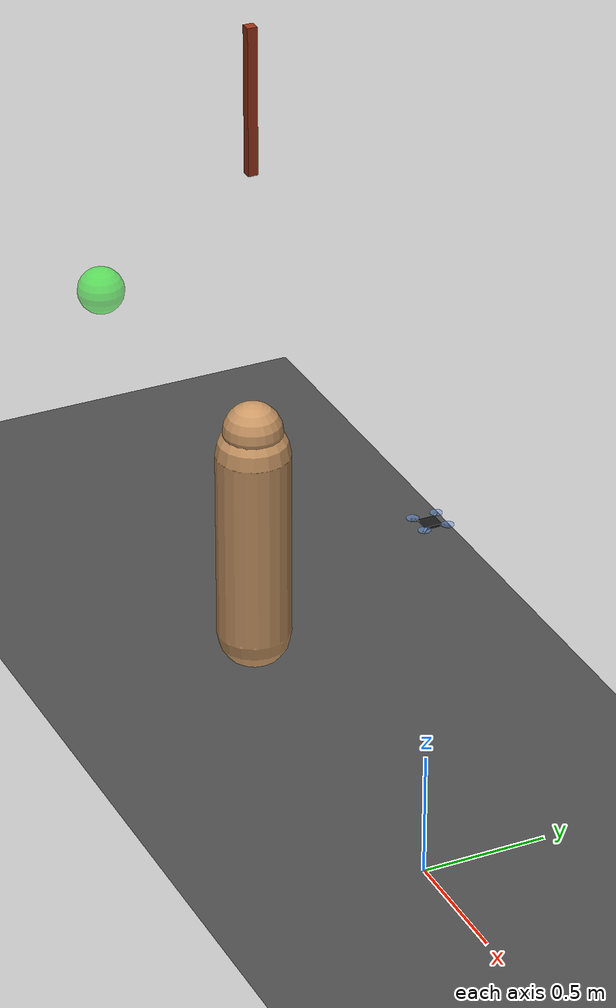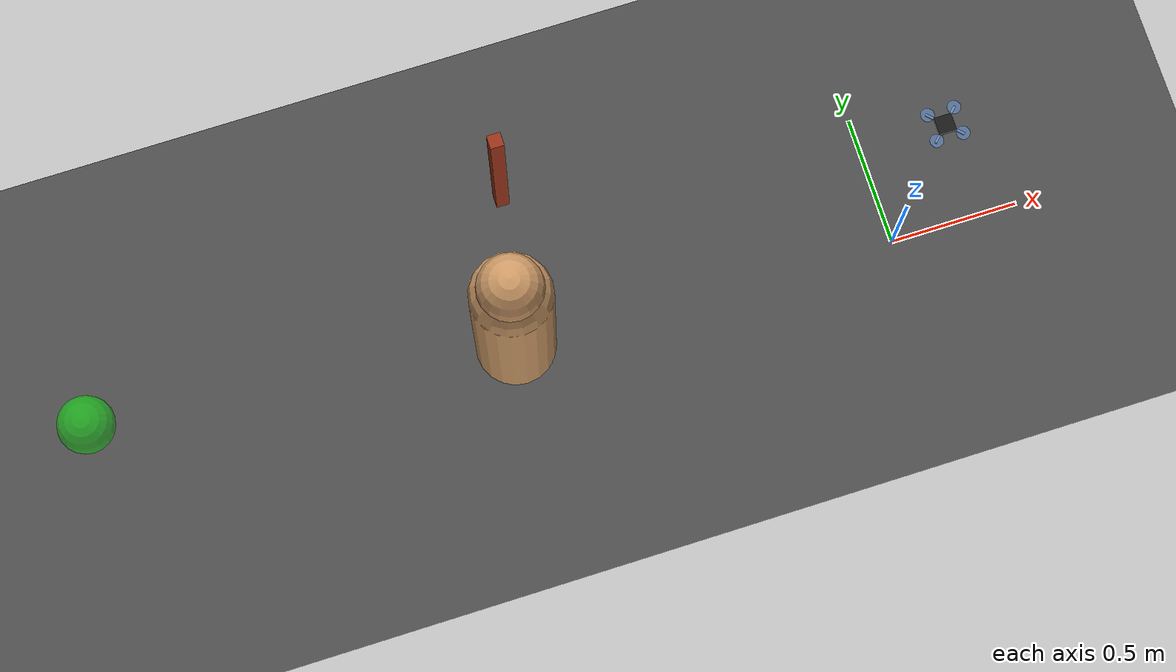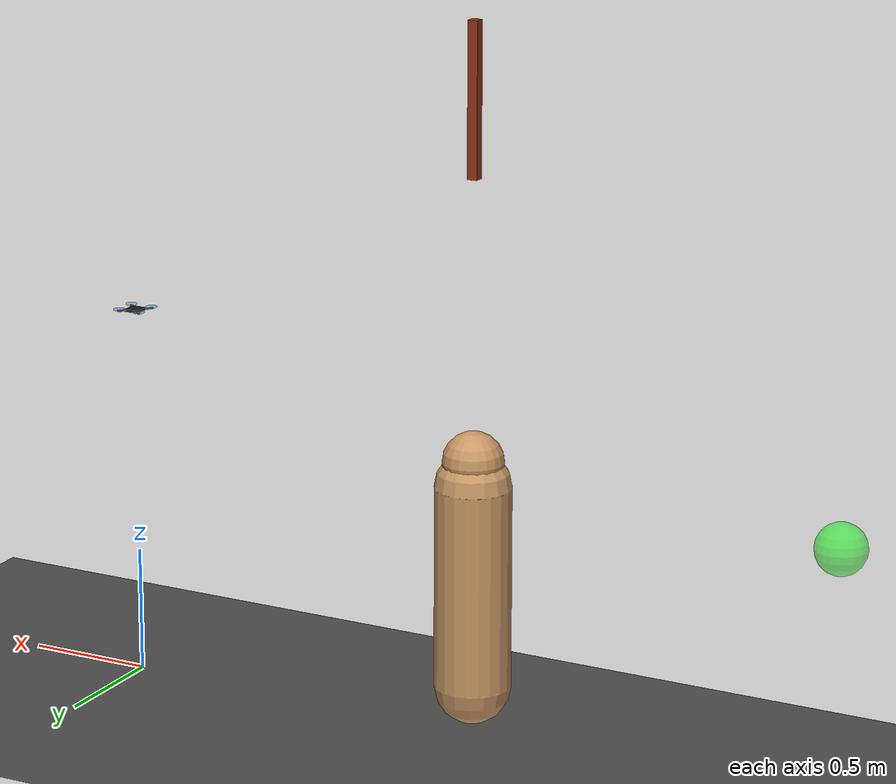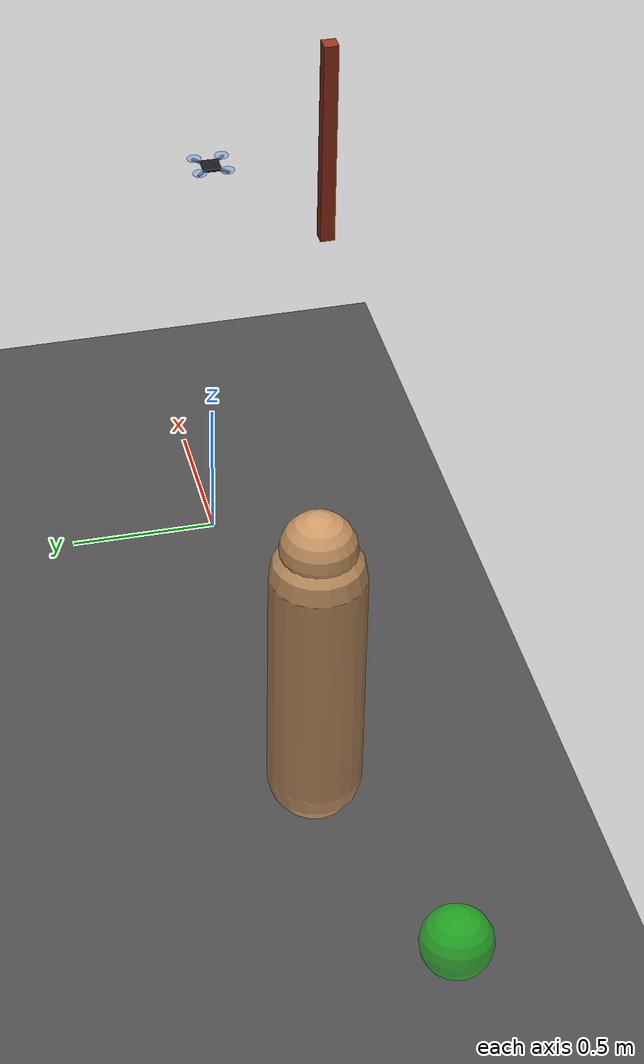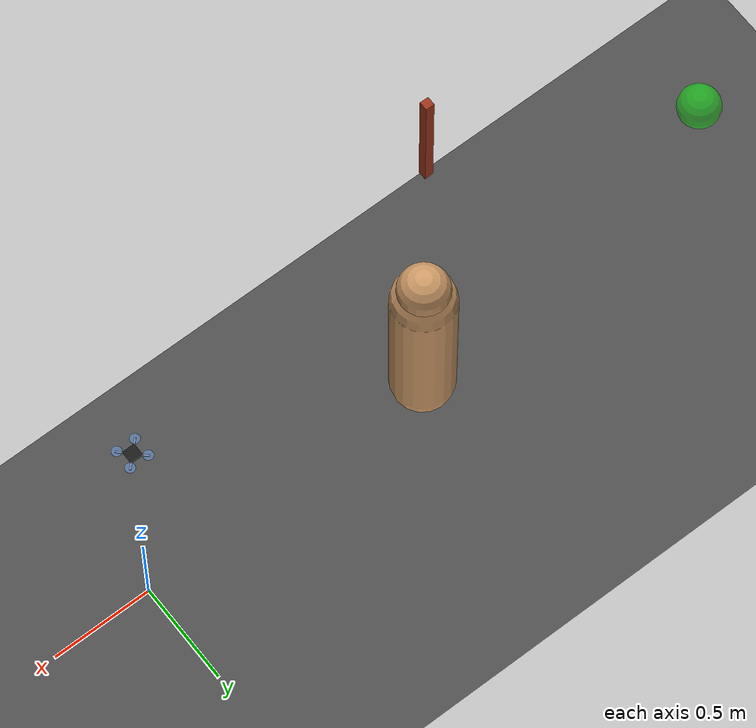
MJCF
<mujoco model="cf2_sacrifice">
  <option integrator="RK4" timestep="0.002" density="1.225" viscosity="1.8e-5"/>

  <!-- Offscreen rendering buffer for MjRenderer video capture -->
  <visual>
    <global offwidth="1920" offheight="1080"/>
    <quality shadowsize="4096"/>
  </visual>

  <worldbody>
    <!-- Ground + lighting -->
    <light pos="0 0 5" dir="0 0 -1" diffuse="0.8 0.8 0.8"/>
    <light pos="3 3 4" dir="-0.5 -0.5 -1" diffuse="0.4 0.4 0.4"/>
    <geom type="plane" size="10 10 0.01" rgba="0.3 0.3 0.3 1"/>

    <!-- The Drone (Crazyflie 2 — same physics as cf2_simple) -->
    <body name="cf2" pos="0 0 1.5">
      <freejoint name="root"/>
      <inertial pos="0 0 0" mass="0.027" diaginertia="2.3951e-5 2.3951e-5 3.2347e-5"/>

      <!-- Central frame -->
      <geom type="box" size="0.03 0.03 0.005" rgba="0.1 0.1 0.1 1" name="frame"/>

      <!-- 4 arms -->
      <geom type="box" pos="0.033 0.033 0" size="0.025 0.004 0.003" euler="0 0 45" name="arm_fr"/>
      <geom type="box" pos="-0.033 0.033 0" size="0.025 0.004 0.003" euler="0 0 -45" name="arm_fl"/>
      <geom type="box" pos="-0.033 -0.033 0" size="0.025 0.004 0.003" euler="0 0 45" name="arm_bl"/>
      <geom type="box" pos="0.033 -0.033 0" size="0.025 0.004 0.003" euler="0 0 -45" name="arm_br"/>

      <!-- 4 rotor discs -->
      <geom type="cylinder" pos="0.046 0.046 0.006" size="0.023 0.001" rgba="0.4 0.6 0.9 0.5"/>
      <geom type="cylinder" pos="-0.046 0.046 0.006" size="0.023 0.001" rgba="0.4 0.6 0.9 0.5"/>
      <geom type="cylinder" pos="-0.046 -0.046 0.006" size="0.023 0.001" rgba="0.4 0.6 0.9 0.5"/>
      <geom type="cylinder" pos="0.046 -0.046 0.006" size="0.023 0.001" rgba="0.4 0.6 0.9 0.5"/>

      <!-- Sensor and actuation sites -->
      <site name="imu" pos="0 0 0"/>
      <site name="actuation" pos="0 0 0"/>
    </body>

    <body name="human" pos="-1.5 0 0" mocap="true">
      <geom type="capsule" size="0.15 0.4" pos="0 0 0.6" rgba="0.8 0.6 0.4 1" name="torso"/>
      <geom type="sphere" size="0.12" pos="0 0 1.1" rgba="0.8 0.6 0.4 1" name="head"/>
    </body>

    <body name="beam" pos="-1.5 0 2.5">
      <freejoint name="beam_joint"/>
      <inertial pos="0 0 0" mass="0.3" diaginertia="0.0015 0.0015 0.00015"/>
      <geom type="box" size="0.02 0.02 0.3" rgba="0.6 0.2 0.1 1" name="steel_beam"
            condim="4" friction="0.8 0.005 0.0001"/>
    </body>

    <!-- Payload target (the drone's mission objective — opposite direction from human) -->
    <site name="payload_target" pos="-3.0 0 1.0" rgba="0 1 0 0.5" size="0.1"/>
  </worldbody>

  <!-- Drone actuators (same as cf2_simple) -->
  <actuator>
    <motor name="body_thrust"  site="actuation" gear="0 0 1 0 0 0" ctrlrange="0 0.6" ctrllimited="true"/>
    <motor name="roll_moment"  site="actuation" gear="0 0 0 1 0 0" ctrlrange="-0.005 0.005" ctrllimited="true"/>
    <motor name="pitch_moment" site="actuation" gear="0 0 0 0 1 0" ctrlrange="-0.005 0.005" ctrllimited="true"/>
    <motor name="yaw_moment"   site="actuation" gear="0 0 0 0 0 1" ctrlrange="-0.002 0.002" ctrllimited="true"/>
  </actuator>

  <sensor>
    <gyro name="body_gyro" site="imu"/>
    <accelerometer name="body_linacc" site="imu"/>
    <framequat name="body_quat" objtype="site" objname="imu"/>
  </sensor>
</mujoco>
